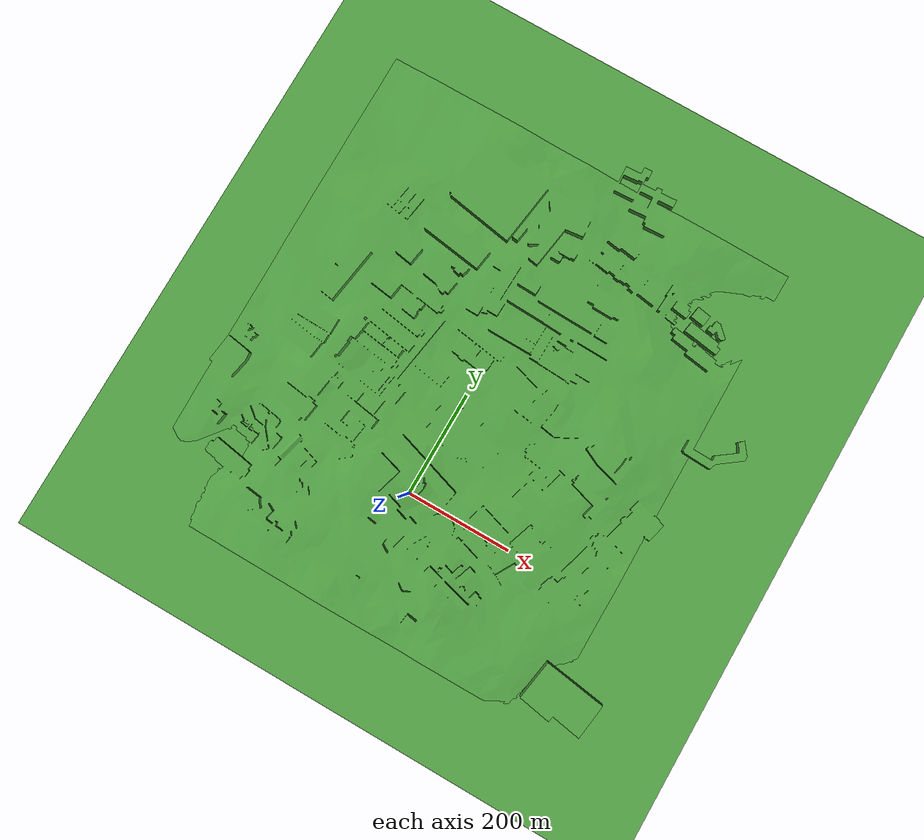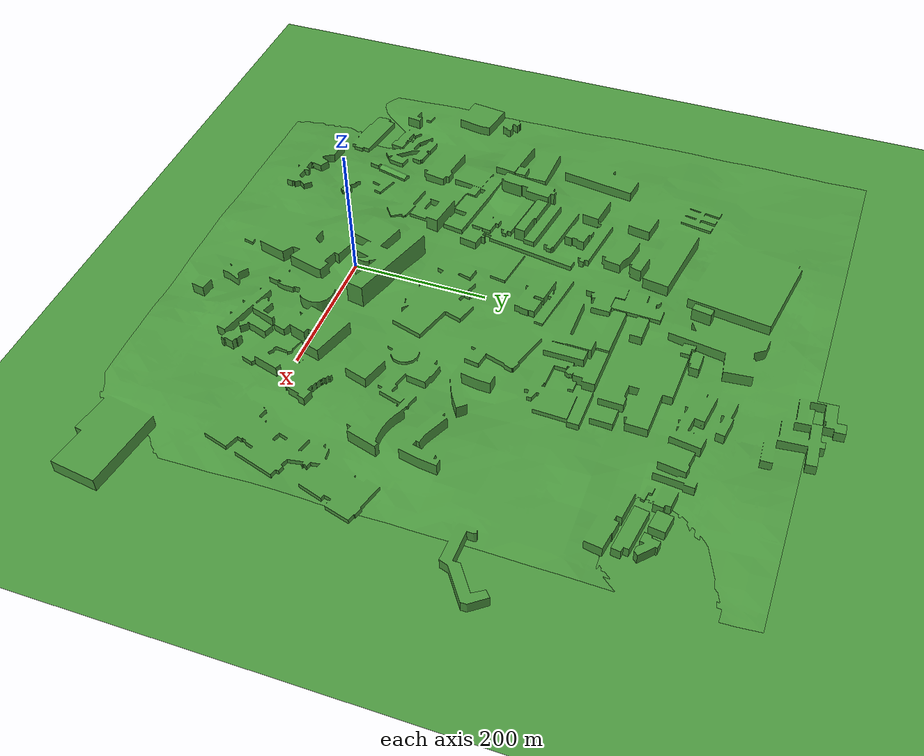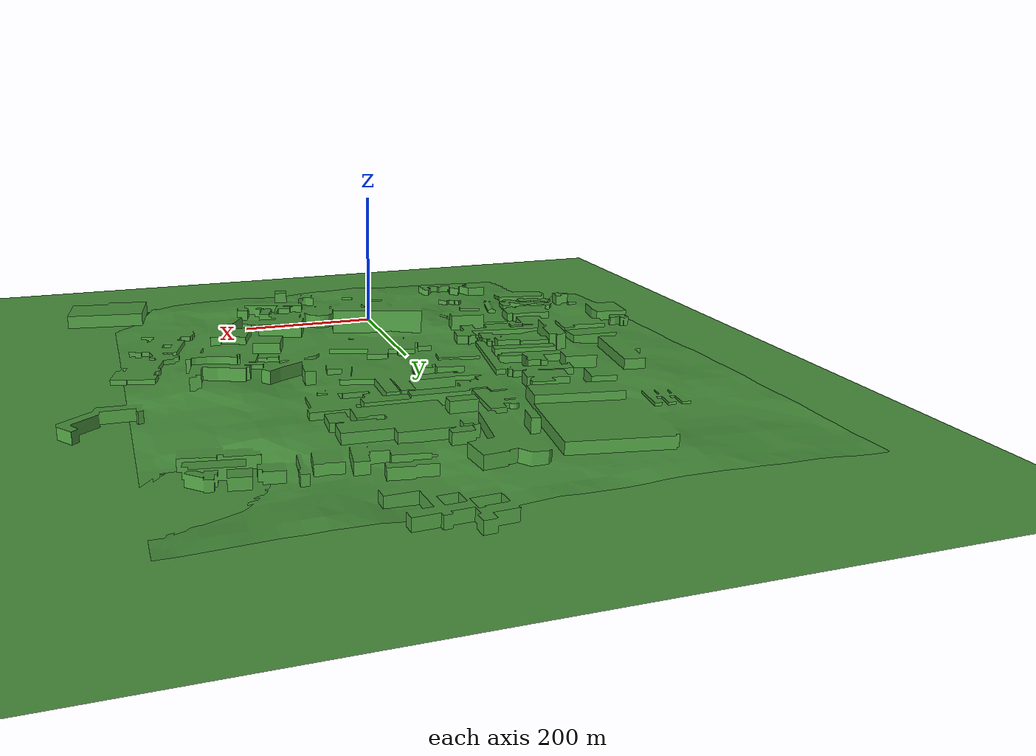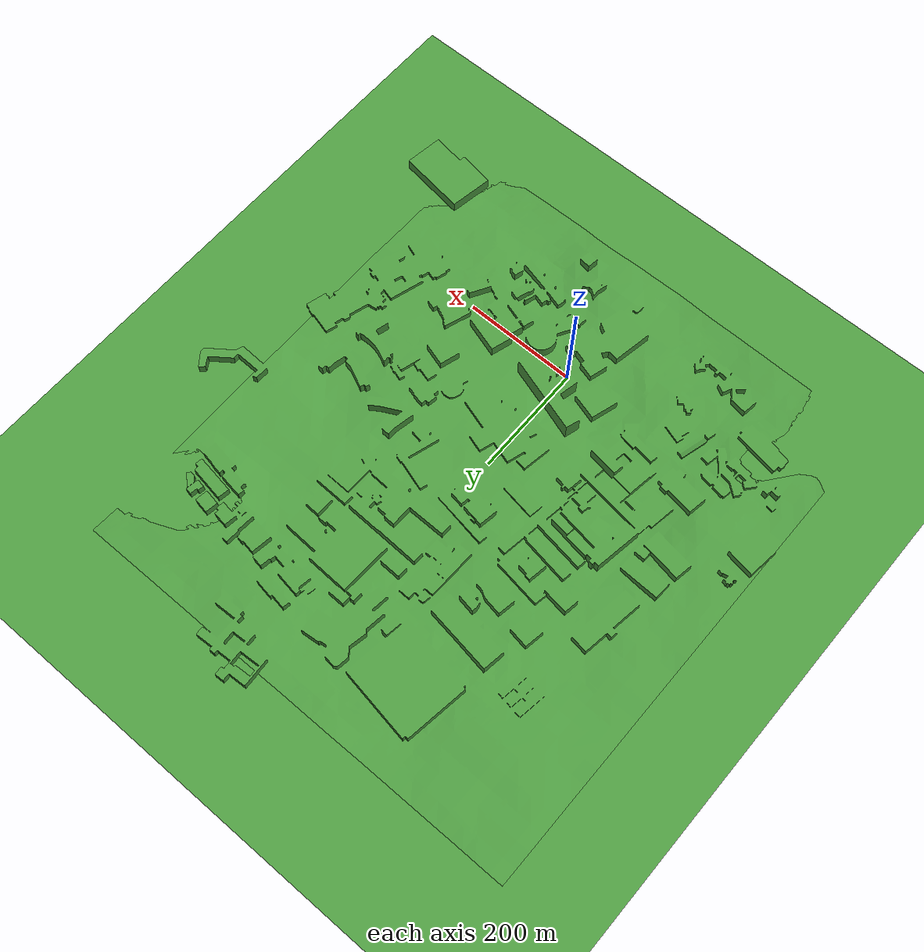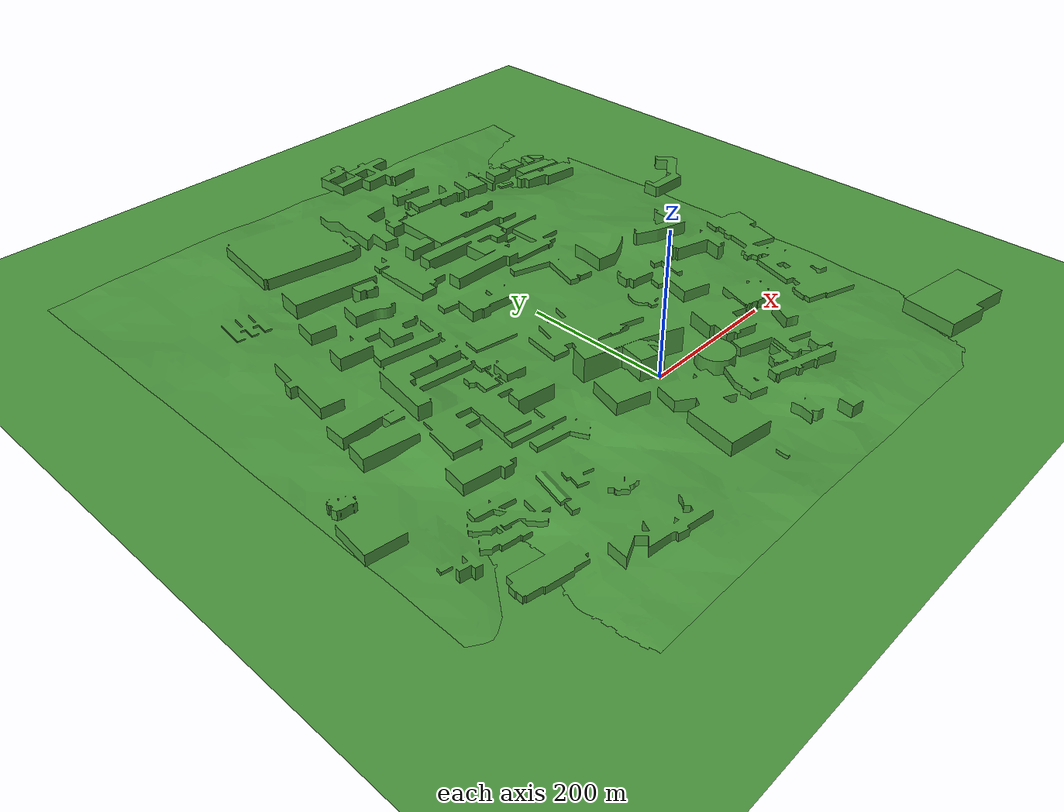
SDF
<sdf version='1.6'>
  <world name='default'>

    <!-- ********** World Properties ********** -->
    <light name='sun' type='directional'>
      <cast_shadows>1</cast_shadows>
      <pose frame=''>0 0 10 0 -0 0</pose>
      <diffuse>0.8 0.8 0.8 1</diffuse>
      <specular>0.2 0.2 0.2 1</specular>
      <attenuation>
        <range>1000</range>
        <constant>0.9</constant>
        <linear>0.01</linear>
        <quadratic>0.001</quadratic>
      </attenuation>
      <direction>-0.5 0.1 -0.9</direction>
    </light>
    <gravity>0 0 -9.8</gravity>
    <magnetic_field>6e-06 2.3e-05 -4.2e-05</magnetic_field>
    <atmosphere type='adiabatic'/>
    <physics name='default_physics' default='0' type='ode'>
      <max_step_size>0.001</max_step_size>
      <real_time_factor>1</real_time_factor>
      <real_time_update_rate>1000</real_time_update_rate>
    </physics>
    <scene>
      <ambient>0.4 0.4 0.4 1</ambient>
      <background>0.7 0.7 0.7 1</background>
      <shadows>1</shadows>
      <sky>
        <clouds>
          <speed>5</speed>
        </clouds>
      </sky>
      <grid>0</grid>
      <origin_visual>0</origin_visual>
    </scene>
    <wind/>

    <!-- ********** Models ********** -->
    <model name='ground_plane'>
      <!-- Keep ground plane completely underneath campus -->
      <pose>-10 207 -16 0 0 0</pose>
      <static>1</static>
      <link name='link'>
        <collision name='collision'>
          <geometry>
            <plane>
              <normal>0 0 1</normal>
              <size>1100 1100</size>
            </plane>
          </geometry>
          <surface>
            <friction>
              <ode>
                <mu>100</mu>
                <mu2>50</mu2>
              </ode>
              <torsional>
                <ode/>
              </torsional>
            </friction>
            <contact>
              <ode/>
            </contact>
            <bounce/>
          </surface>
          <max_contacts>10</max_contacts>
        </collision>
        <visual name='visual'>
          <cast_shadows>1</cast_shadows>
          <geometry>
            <plane>
              <normal>0 0 1</normal>
              <size>1100 1100</size>
            </plane>
          </geometry>
          <material>
            <script>
            <uri>model://corridor/materials/scripts</uri>
            <uri>model://corridor/materials/textures</uri>
            <name>Gazebo/Grass</name>
            </script>
          </material>
        </visual>
        <self_collide>0</self_collide>
        <enable_wind>0</enable_wind>
        <kinematic>0</kinematic>
      </link>
    </model>

    <model name='Campus'>
      <static>1</static>
      <include>
        <uri>model://campus_hd</uri>
        <!-- Want jackal at (10, -207, 6.0) -->
        <!-- Campus spawns at z=20 -->
        <pose>-10 207 -26 0 0 0</pose>
      </include>
    </model>

    <plugin name="ActorPosesPlugin" filename="libActorPosesPlugin.so"></plugin>

  </world>
</sdf>

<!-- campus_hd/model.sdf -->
<sdf version='1.6'>
  <model name="Campus">
      <link name="campus_hd">

        <collision name="collision">
          <geometry>
            <mesh>
              <uri>model://campus_hd/meshes/campus.dae</uri>
            </mesh>
          </geometry>
        </collision>

        <visual name="visual">
          <geometry>
            <mesh>
              <uri>model://campus_hd/meshes/campus.dae</uri>
            </mesh>
          </geometry>
          <material>
            <script>
              <uri>model://corridor/materials/scripts</uri>
              <uri>model://corridor/materials/textures</uri>
              <name>Gazebo/Grass</name>
            </script>
            <ambient>1 1 1 1</ambient>
          </material>
        </visual>

      </link>
  </model>
</sdf>
